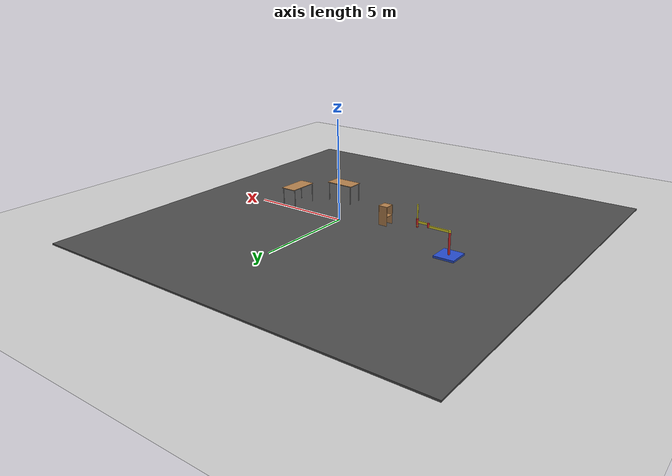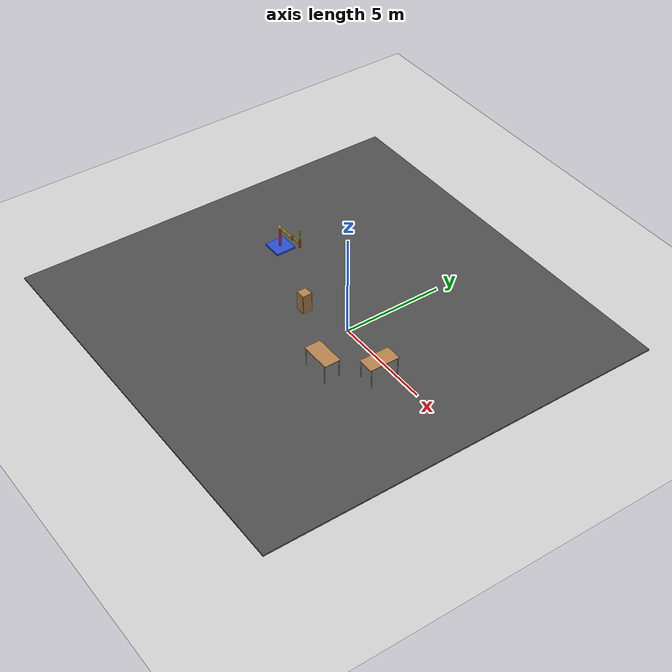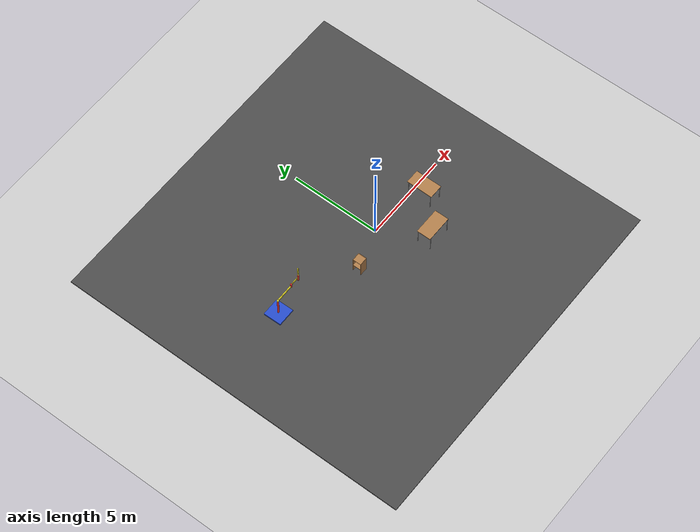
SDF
<sdf version="1.7">
 <world name="default">
  <light name="sun" type="directional">
   <pose>0 0 10 0 -0 0</pose>
   <diffuse>0.8 0.8 0.8 1</diffuse>
   <specular>0.2 0.2 0.2 1</specular>
   <attenuation>
    <range>1000</range>
    <constant>0.9</constant>
    <linear>0.01</linear>
    <quadratic>0.001</quadratic>
   </attenuation>
   <direction>-0.5 0.1 -0.9</direction>
   <spot><inner_angle>0</inner_angle><outer_angle>0</outer_angle><falloff>0</falloff></spot>
  </light>
  <model name="ground_plane">
   <static>1</static>
   <link name="link">
    <collision name="collision">
     <geometry><plane><normal>0 0 1</normal><size>100 100</size></plane></geometry>
     <surface>
      <contact><collide_bitmask>65535</collide_bitmask></contact>
      <friction><ode><mu>100</mu><mu2>50</mu2></ode></friction>
     </surface>
    </collision>
    <visual name="visual">
     <cast_shadows>0</cast_shadows>
     <geometry><plane><normal>0 0 1</normal><size>100 100</size></plane></geometry>
     <material>
      <script><uri>file://media/materials/scripts/gazebo.material</uri><name>Gazebo/Grey</name></script>
     </material>
    </visual>
   </link>
  </model>
  <gravity>0 0 -9.8</gravity>
  <magnetic_field>6e-06 2.3e-05 -4.2e-05</magnetic_field>
  <atmosphere type="adiabatic"/>
  <physics type="ode">
   <max_step_size>0.001</max_step_size>
   <real_time_factor>1</real_time_factor>
   <real_time_update_rate>1000</real_time_update_rate>
  </physics>
  <scene><ambient>0.4 0.4 0.4 1</ambient><background>0.7 0.7 0.7 1</background><shadows>1</shadows></scene>
  <audio><device>default</device></audio>
  <spherical_coordinates>
   <surface_model>EARTH_WGS84</surface_model>
   <latitude_deg>0</latitude_deg>
   <longitude_deg>0</longitude_deg>
   <elevation>0</elevation>
   <heading_deg>0</heading_deg>
  </spherical_coordinates>
  <model name="cabinet">
   <static>1</static>
   <link name="cabinet_bottom_plate">
    <inertial>
     <pose>0 0 -1 0 -0 0</pose>
     <inertia><ixx>2.05</ixx><ixy>0</ixy><ixz>0</ixz><iyy>2.05</iyy><iyz>0</iyz><izz>2.05</izz></inertia>
     <mass>25</mass>
    </inertial>
    <collision name="cabinet_bottom_plate_geom">
     <pose>0 0 0.01 0 -0 0</pose>
     <geometry><box><size>0.45 0.45 0.02</size></box></geometry>
    </collision>
    <visual name="cabinet_bottom_plate_geom_visual">
     <pose>0 0 0.01 0 -0 0</pose>
     <geometry><box><size>0.45 0.45 0.02</size></box></geometry>
     <material>
      <script><uri>file://media/materials/scripts/gazebo.material</uri><name>Gazebo/Wood</name></script>
     </material>
    </visual>
    <collision name="cabinet_bottom_plate_geom_cabinet_back_plate">
     <pose>0.235 0 0.51 0 -0 0</pose>
     <geometry><box><size>0.02 0.45 1.02</size></box></geometry>
    </collision>
    <visual name="cabinet_bottom_plate_geom_cabinet_back_plate_visual">
     <pose>0.235 0 0.51 0 -0 0</pose>
     <geometry><box><size>0.02 0.45 1.02</size></box></geometry>
     <material>
      <script><uri>file://media/materials/scripts/gazebo.material</uri><name>Gazebo/Wood</name></script>
     </material>
    </visual>
    <collision name="cabinet_bottom_plate_geom_cabinet_left_plate">
     <pose>0 0.235 0.51 0 -0 0</pose>
     <geometry><box><size>0.45 0.02 1.02</size></box></geometry>
    </collision>
    <visual name="cabinet_bottom_plate_geom_cabinet_left_plate_visual">
     <pose>0 0.235 0.51 0 -0 0</pose>
     <geometry><box><size>0.45 0.02 1.02</size></box></geometry>
     <material>
      <script><uri>file://media/materials/scripts/gazebo.material</uri><name>Gazebo/Wood</name></script>
     </material>
    </visual>
    <collision name="cabinet_bottom_plate_geom_cabinet_middle_plate">
     <pose>0 0 0.51 0 -0 0</pose>
     <geometry><box><size>0.45 0.45 0.02</size></box></geometry>
    </collision>
    <visual name="cabinet_bottom_plate_geom_cabinet_middle_plate_visual">
     <pose>0 0 0.51 0 -0 0</pose>
     <geometry><box><size>0.45 0.45 0.02</size></box></geometry>
     <material>
      <script><uri>file://media/materials/scripts/gazebo.material</uri><name>Gazebo/Wood</name></script>
     </material>
    </visual>
    <collision name="cabinet_bottom_plate_geom_cabinet_right_plate">
     <pose>0 -0.235 0.51 0 -0 0</pose>
     <geometry><box><size>0.45 0.02 1.02</size></box></geometry>
    </collision>
    <visual name="cabinet_bottom_plate_geom_cabinet_right_plate_visual">
     <pose>0 -0.235 0.51 0 -0 0</pose>
     <geometry><box><size>0.45 0.02 1.02</size></box></geometry>
     <material>
      <script><uri>file://media/materials/scripts/gazebo.material</uri><name>Gazebo/Wood</name></script>
     </material>
    </visual>
    <collision name="cabinet_bottom_plate_geom_cabinet_top_plate">
     <pose>0 0 1.01 0 -0 0</pose>
     <geometry><box><size>0.45 0.45 0.02</size></box></geometry>
    </collision>
    <visual name="cabinet_bottom_plate_geom_cabinet_top_plate_visual">
     <pose>0 0 1.01 0 -0 0</pose>
     <geometry><box><size>0.45 0.45 0.02</size></box></geometry>
     <material>
      <script><uri>file://media/materials/scripts/gazebo.material</uri><name>Gazebo/Wood</name></script>
     </material>
    </visual>
   </link>
   <pose>-2.23799 -0.749929 0 0 -0 0</pose>
  </model>
  <model name="table">
   <static>1</static>
   <link name="link">
    <collision name="surface">
     <pose>0 0 1 0 -0 0</pose>
     <geometry><box><size>1.5 0.8 0.03</size></box></geometry>
     <surface><friction><ode><mu>0.6</mu><mu2>0.6</mu2></ode></friction></surface>
    </collision>
    <visual name="visual1">
     <pose>0 0 1 0 -0 0</pose>
     <geometry><box><size>1.5 0.8 0.03</size></box></geometry>
     <material>
      <script><uri>file://media/materials/scripts/gazebo.material</uri><name>Gazebo/Wood</name></script>
     </material>
    </visual>
    <collision name="front_left_leg">
     <pose>0.68 0.38 0.5 0 -0 0</pose>
     <geometry><cylinder><radius>0.02</radius><length>1</length></cylinder></geometry>
    </collision>
    <visual name="front_left_leg">
     <pose>0.68 0.38 0.5 0 -0 0</pose>
     <geometry><cylinder><radius>0.02</radius><length>1</length></cylinder></geometry>
     <material>
      <script><uri>file://media/materials/scripts/gazebo.material</uri><name>Gazebo/Grey</name></script>
     </material>
    </visual>
    <collision name="front_right_leg">
     <pose>0.68 -0.38 0.5 0 -0 0</pose>
     <geometry><cylinder><radius>0.02</radius><length>1</length></cylinder></geometry>
    </collision>
    <visual name="front_right_leg">
     <pose>0.68 -0.38 0.5 0 -0 0</pose>
     <geometry><cylinder><radius>0.02</radius><length>1</length></cylinder></geometry>
     <material>
      <script><uri>file://media/materials/scripts/gazebo.material</uri><name>Gazebo/Grey</name></script>
     </material>
    </visual>
    <collision name="back_right_leg">
     <pose>-0.68 -0.38 0.5 0 -0 0</pose>
     <geometry><cylinder><radius>0.02</radius><length>1</length></cylinder></geometry>
    </collision>
    <visual name="back_right_leg">
     <pose>-0.68 -0.38 0.5 0 -0 0</pose>
     <geometry><cylinder><radius>0.02</radius><length>1</length></cylinder></geometry>
     <material>
      <script><uri>file://media/materials/scripts/gazebo.material</uri><name>Gazebo/Grey</name></script>
     </material>
    </visual>
    <collision name="back_left_leg">
     <pose>-0.68 0.38 0.5 0 -0 0</pose>
     <geometry><cylinder><radius>0.02</radius><length>1</length></cylinder></geometry>
    </collision>
    <visual name="back_left_leg">
     <pose>-0.68 0.38 0.5 0 -0 0</pose>
     <geometry><cylinder><radius>0.02</radius><length>1</length></cylinder></geometry>
     <material>
      <script><uri>file://media/materials/scripts/gazebo.material</uri><name>Gazebo/Grey</name></script>
     </material>
    </visual>
   </link>
   <pose>1.51334 -2.38849 0 0 -0 0</pose>
  </model>
  <model name="table_0">
   <static>1</static>
   <link name="link">
    <collision name="surface">
     <pose>0 0 1 0 -0 0</pose>
     <geometry><box><size>1.5 0.8 0.03</size></box></geometry>
     <surface><friction><ode><mu>0.6</mu><mu2>0.6</mu2></ode></friction></surface>
    </collision>
    <visual name="visual1">
     <pose>0 0 1 0 -0 0</pose>
     <geometry><box><size>1.5 0.8 0.03</size></box></geometry>
     <material>
      <script><uri>file://media/materials/scripts/gazebo.material</uri><name>Gazebo/Wood</name></script>
     </material>
    </visual>
    <collision name="front_left_leg">
     <pose>0.68 0.38 0.5 0 -0 0</pose>
     <geometry><cylinder><radius>0.02</radius><length>1</length></cylinder></geometry>
    </collision>
    <visual name="front_left_leg">
     <pose>0.68 0.38 0.5 0 -0 0</pose>
     <geometry><cylinder><radius>0.02</radius><length>1</length></cylinder></geometry>
     <material>
      <script><uri>file://media/materials/scripts/gazebo.material</uri><name>Gazebo/Grey</name></script>
     </material>
    </visual>
    <collision name="front_right_leg">
     <pose>0.68 -0.38 0.5 0 -0 0</pose>
     <geometry><cylinder><radius>0.02</radius><length>1</length></cylinder></geometry>
    </collision>
    <visual name="front_right_leg">
     <pose>0.68 -0.38 0.5 0 -0 0</pose>
     <geometry><cylinder><radius>0.02</radius><length>1</length></cylinder></geometry>
     <material>
      <script><uri>file://media/materials/scripts/gazebo.material</uri><name>Gazebo/Grey</name></script>
     </material>
    </visual>
    <collision name="back_right_leg">
     <pose>-0.68 -0.38 0.5 0 -0 0</pose>
     <geometry><cylinder><radius>0.02</radius><length>1</length></cylinder></geometry>
    </collision>
    <visual name="back_right_leg">
     <pose>-0.68 -0.38 0.5 0 -0 0</pose>
     <geometry><cylinder><radius>0.02</radius><length>1</length></cylinder></geometry>
     <material>
      <script><uri>file://media/materials/scripts/gazebo.material</uri><name>Gazebo/Grey</name></script>
     </material>
    </visual>
    <collision name="back_left_leg">
     <pose>-0.68 0.38 0.5 0 -0 0</pose>
     <geometry><cylinder><radius>0.02</radius><length>1</length></cylinder></geometry>
    </collision>
    <visual name="back_left_leg">
     <pose>-0.68 0.38 0.5 0 -0 0</pose>
     <geometry><cylinder><radius>0.02</radius><length>1</length></cylinder></geometry>
     <material>
      <script><uri>file://media/materials/scripts/gazebo.material</uri><name>Gazebo/Grey</name></script>
     </material>
    </visual>
   </link>
   <pose>3.16423 -0.615901 0 0 0 -1.57665</pose>
  </model>
  <model name="simple_arm">
   <link name="arm_base">
    <inertial>
     <pose>0 0 0.00099 0 -0 0</pose>
     <inertia><ixx>1.11</ixx><ixy>0</ixy><ixz>0</ixz><iyy>100.11</iyy><iyz>0</iyz><izz>1.01</izz></inertia>
     <mass>101</mass>
    </inertial>
    <collision name="arm_base_geom">
     <pose>0 0 0.05 0 -0 0</pose>
     <geometry><box><size>1 1 0.1</size></box></geometry>
    </collision>
    <visual name="arm_base_geom_visual">
     <pose>0 0 0.05 0 -0 0</pose>
     <geometry><box><size>1 1 0.1</size></box></geometry>
     <material>
      <script><uri>file://media/materials/scripts/gazebo.material</uri><name>Gazebo/Blue</name></script>
     </material>
    </visual>
    <collision name="arm_base_geom_arm_trunk">
     <pose>0 0 0.6 0 -0 0</pose>
     <geometry><cylinder><radius>0.05</radius><length>1</length></cylinder></geometry>
    </collision>
    <visual name="arm_base_geom_arm_trunk_visual">
     <pose>0 0 0.6 0 -0 0</pose>
     <geometry><cylinder><radius>0.05</radius><length>1</length></cylinder></geometry>
     <material>
      <script><uri>file://media/materials/scripts/gazebo.material</uri><name>Gazebo/Red</name></script>
     </material>
    </visual>
   </link>
   <link name="arm_shoulder_pan">
    <pose>0 0 1.1 0 -0 0</pose>
    <inertial>
     <pose>0.045455 0 0 0 -0 0</pose>
     <inertia><ixx>0.011</ixx><ixy>0</ixy><ixz>0</ixz><iyy>0.0225</iyy><iyz>0</iyz><izz>0.0135</izz></inertia>
     <mass>1.1</mass>
    </inertial>
    <collision name="arm_shoulder_pan_geom">
     <pose>0 0 0.05 0 -0 0</pose>
     <geometry><cylinder><radius>0.05</radius><length>0.1</length></cylinder></geometry>
    </collision>
    <visual name="arm_shoulder_pan_geom_visual">
     <pose>0 0 0.05 0 -0 0</pose>
     <geometry><cylinder><radius>0.05</radius><length>0.1</length></cylinder></geometry>
     <material>
      <script><uri>file://media/materials/scripts/gazebo.material</uri><name>Gazebo/Yellow</name></script>
     </material>
    </visual>
    <collision name="arm_shoulder_pan_geom_arm_shoulder">
     <pose>0.55 0 0.05 0 -0 0</pose>
     <geometry><box><size>1 0.05 0.1</size></box></geometry>
    </collision>
    <visual name="arm_shoulder_pan_geom_arm_shoulder_visual">
     <pose>0.55 0 0.05 0 -0 0</pose>
     <geometry><box><size>1 0.05 0.1</size></box></geometry>
     <material>
      <script><uri>file://media/materials/scripts/gazebo.material</uri><name>Gazebo/Yellow</name></script>
     </material>
    </visual>
   </link>
   <link name="arm_elbow_pan">
    <pose>1.05 0 1.1 0 -0 0</pose>
    <inertial>
     <pose>0.0875 0 0.083333 0 -0 0</pose>
     <inertia>
      <ixx>0.031</ixx>
      <ixy>0</ixy>
      <ixz>0.005</ixz>
      <iyy>0.07275</iyy>
      <iyz>0</iyz>
      <izz>0.04475</izz>
     </inertia>
     <mass>1.2</mass>
    </inertial>
    <collision name="arm_elbow_pan_geom">
     <pose>0 0 0.1 0 -0 0</pose>
     <geometry><cylinder><radius>0.05</radius><length>0.2</length></cylinder></geometry>
    </collision>
    <visual name="arm_elbow_pan_geom_visual">
     <pose>0 0 0.1 0 -0 0</pose>
     <geometry><cylinder><radius>0.05</radius><length>0.2</length></cylinder></geometry>
     <material>
      <script><uri>file://media/materials/scripts/gazebo.material</uri><name>Gazebo/Red</name></script>
     </material>
    </visual>
    <collision name="arm_elbow_pan_geom_arm_elbow">
     <pose>0.3 0 0.15 0 -0 0</pose>
     <geometry><box><size>0.5 0.03 0.1</size></box></geometry>
    </collision>
    <visual name="arm_elbow_pan_geom_arm_elbow_visual">
     <pose>0.3 0 0.15 0 -0 0</pose>
     <geometry><box><size>0.5 0.03 0.1</size></box></geometry>
     <material>
      <script><uri>file://media/materials/scripts/gazebo.material</uri><name>Gazebo/Yellow</name></script>
     </material>
    </visual>
    <collision name="arm_elbow_pan_geom_arm_wrist">
     <pose>0.55 0 0.15 0 -0 0</pose>
     <geometry><cylinder><radius>0.05</radius><length>0.3</length></cylinder></geometry>
    </collision>
    <visual name="arm_elbow_pan_geom_arm_wrist_visual">
     <pose>0.55 0 0.15 0 -0 0</pose>
     <geometry><cylinder><radius>0.05</radius><length>0.3</length></cylinder></geometry>
     <material>
      <script><uri>file://media/materials/scripts/gazebo.material</uri><name>Gazebo/Red</name></script>
     </material>
    </visual>
   </link>
   <link name="arm_wrist_lift">
    <pose>1.6 0 1.05 0 -0 0</pose>
    <inertial>
     <inertia><ixx>0.01</ixx><ixy>0</ixy><ixz>0</ixz><iyy>0.01</iyy><iyz>0</iyz><izz>0.001</izz></inertia>
     <mass>0.1</mass>
    </inertial>
    <collision name="arm_wrist_lift_geom">
     <pose>0 0 0.5 0 -0 0</pose>
     <geometry><cylinder><radius>0.03</radius><length>1</length></cylinder></geometry>
    </collision>
    <visual name="arm_wrist_lift_geom_visual">
     <pose>0 0 0.5 0 -0 0</pose>
     <geometry><cylinder><radius>0.03</radius><length>1</length></cylinder></geometry>
     <material>
      <script><uri>file://media/materials/scripts/gazebo.material</uri><name>Gazebo/Yellow</name></script>
     </material>
    </visual>
   </link>
   <link name="arm_wrist_roll">
    <pose>1.6 0 1 0 -0 0</pose>
    <inertial>
     <inertia><ixx>0.01</ixx><ixy>0</ixy><ixz>0</ixz><iyy>0.01</iyy><iyz>0</iyz><izz>0.001</izz></inertia>
     <mass>0.1</mass>
    </inertial>
    <collision name="arm_wrist_roll_geom">
     <pose>0 0 0.025 0 -0 0</pose>
     <geometry><cylinder><radius>0.05</radius><length>0.05</length></cylinder></geometry>
    </collision>
    <visual name="arm_wrist_roll_geom_visual">
     <pose>0 0 0.025 0 -0 0</pose>
     <geometry><cylinder><radius>0.05</radius><length>0.05</length></cylinder></geometry>
     <material>
      <script><uri>file://media/materials/scripts/gazebo.material</uri><name>Gazebo/Red</name></script>
     </material>
    </visual>
   </link>
   <joint name="arm_shoulder_pan_joint" type="revolute">
    <parent>arm_base</parent>
    <child>arm_shoulder_pan</child>
    <axis>
     <dynamics>
      <damping>1</damping>
      <friction>0</friction>
      <spring_reference>0</spring_reference>
      <spring_stiffness>0</spring_stiffness>
     </dynamics>
     <xyz expressed_in="__model__">0 0 1</xyz>
     <limit><lower>-1e+16</lower><upper>1e+16</upper></limit>
    </axis>
   </joint>
   <joint name="arm_elbow_pan_joint" type="revolute">
    <parent>arm_shoulder_pan</parent>
    <child>arm_elbow_pan</child>
    <axis>
     <dynamics>
      <damping>1</damping>
      <friction>0</friction>
      <spring_reference>0</spring_reference>
      <spring_stiffness>0</spring_stiffness>
     </dynamics>
     <xyz expressed_in="__model__">0 0 1</xyz>
     <limit><lower>-1e+16</lower><upper>1e+16</upper></limit>
    </axis>
   </joint>
   <joint name="arm_wrist_lift_joint" type="prismatic">
    <parent>arm_elbow_pan</parent>
    <child>arm_wrist_lift</child>
    <axis>
     <dynamics>
      <damping>1</damping>
      <friction>0</friction>
      <spring_reference>0</spring_reference>
      <spring_stiffness>0</spring_stiffness>
     </dynamics>
     <limit><lower>-0.8</lower><upper>0.1</upper></limit>
     <xyz expressed_in="__model__">0 0 1</xyz>
    </axis>
   </joint>
   <joint name="arm_wrist_roll_joint" type="revolute">
    <parent>arm_wrist_lift</parent>
    <child>arm_wrist_roll</child>
    <axis>
     <dynamics>
      <damping>1</damping>
      <friction>0</friction>
      <spring_reference>0</spring_reference>
      <spring_stiffness>0</spring_stiffness>
     </dynamics>
     <limit><lower>-2.99999</lower><upper>2.99999</upper></limit>
     <xyz expressed_in="__model__">0 0 1</xyz>
    </axis>
   </joint>
   <pose>-6.59295 0.850331 0.049944 0.000114 2e-06 0.011803</pose>
  </model>
  <model name="asphalt_plane">
   <static>1</static>
   <link name="link">
    <collision name="collision"><geometry><box><size>20 20 0.1</size></box></geometry></collision>
    <visual name="visual">
     <cast_shadows>0</cast_shadows>
     <geometry><box><size>20 20 0.1</size></box></geometry>
     <material>
      <script>
       <uri>model://asphalt_plane/materials/scripts</uri>
       <uri>model://asphalt_plane/materials/textures</uri>
       <name>vrc/asphalt</name>
      </script>
     </material>
    </visual>
   </link>
   <pose>-1.44545 -0.02609 0 0 -0 0</pose>
  </model>
 </world>
</sdf>
